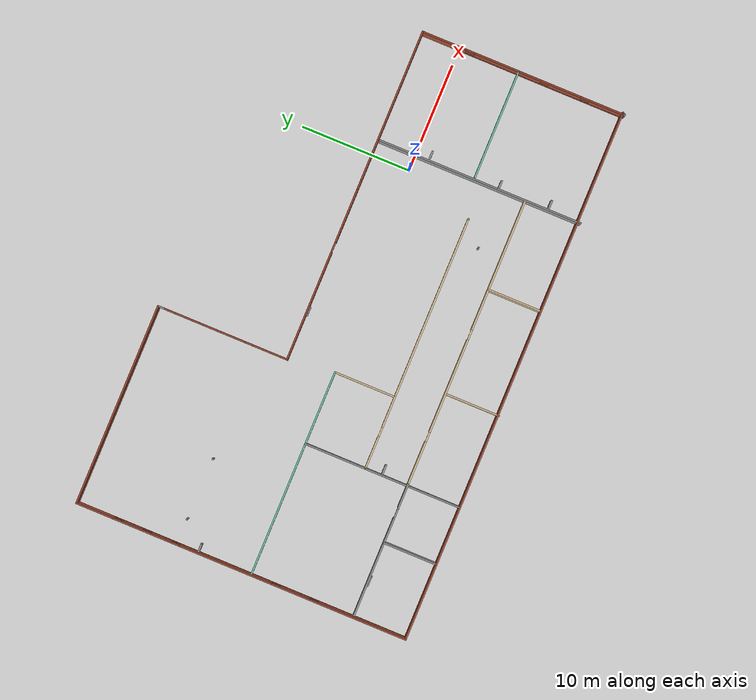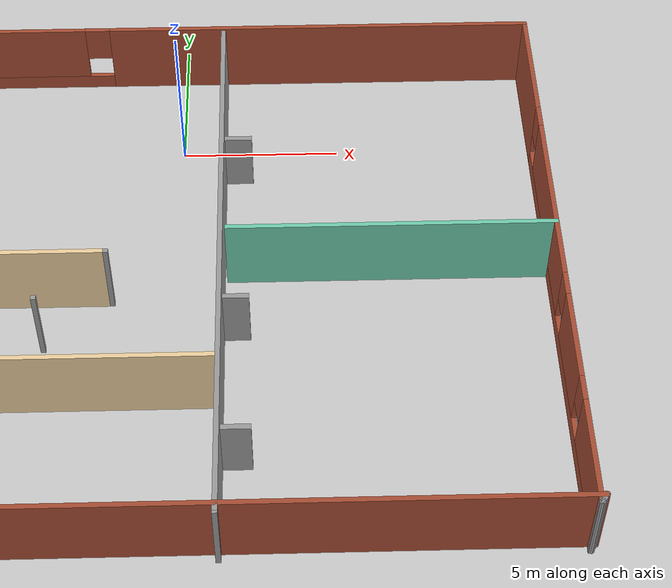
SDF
<?xml version='1.0'?>
<sdf version='1.6'>
  <model name='apartment'>
    <pose frame=''>-12.9863 0.062603 0 0 -0 0</pose>
    <link name='Door_0'>
      <collision name='Door_0_Collision'>
        <geometry>
          <box>
            <size>0.9 0.17 2</size>
          </box>
        </geometry>
        <pose frame=''>0 0 1 0 -0 0</pose>
      </collision>
      <visual name='Door_0_Visual'>
        <pose frame=''>0 0 1 0 -0 0</pose>
        <geometry>
          <box>
            <size>0.9 0.17 2</size>
          </box>
        </geometry>
        <material>
          <script>
            <uri>file://media/materials/scripts/gazebo.material</uri>
            <name>Gazebo/Grey</name>
          </script>
        </material>
      </visual>
      <pose frame=''>-11.7869 -7.94417 0 0 -0 0</pose>
    </link>
    <link name='Door_1'>
      <collision name='Door_1_Collision'>
        <geometry>
          <box>
            <size>0.9 0.17 2</size>
          </box>
        </geometry>
        <pose frame=''>0 0 1 0 -0 0</pose>
      </collision>
      <visual name='Door_1_Visual'>
        <pose frame=''>0 0 1 0 -0 0</pose>
        <geometry>
          <box>
            <size>0.9 0.17 2</size>
          </box>
        </geometry>
        <material>
          <script>
            <uri>file://media/materials/scripts/gazebo.material</uri>
            <name>Gazebo/Grey</name>
          </script>
        </material>
      </visual>
      <pose frame=''>-21.1714 -10.4305 0 0 -0 0</pose>
    </link>
    <link name='Door_12'>
      <collision name='Door_12_Collision'>
        <geometry>
          <box>
            <size>0.9 0.17 2</size>
          </box>
        </geometry>
        <pose frame=''>0 0 1 0 -0 0</pose>
      </collision>
      <visual name='Door_12_Visual'>
        <pose frame=''>0 0 1 0 -0 0</pose>
        <geometry>
          <box>
            <size>0.9 0.17 2</size>
          </box>
        </geometry>
        <material>
          <script>
            <uri>file://media/materials/scripts/gazebo.material</uri>
            <name>Gazebo/Grey</name>
          </script>
        </material>
      </visual>
      <pose frame=''>-24.1741 4.16519 0 0 -0 0</pose>
    </link>
    <link name='Door_5'>
      <collision name='Door_5_Collision'>
        <geometry>
          <box>
            <size>0.9 0.17 2</size>
          </box>
        </geometry>
        <pose frame=''>0 0 1 0 -0 0</pose>
      </collision>
      <visual name='Door_5_Visual'>
        <pose frame=''>0 0 1 0 -0 0</pose>
        <geometry>
          <box>
            <size>0.9 0.17 2</size>
          </box>
        </geometry>
        <material>
          <script>
            <uri>file://media/materials/scripts/gazebo.material</uri>
            <name>Gazebo/Grey</name>
          </script>
        </material>
      </visual>
      <pose frame=''>14.7939 -12.4665 0 0 -0 0</pose>
    </link>
    <link name='Door_6'>
      <collision name='Door_6_Collision'>
        <geometry>
          <box>
            <size>0.9 0.17 2</size>
          </box>
        </geometry>
        <pose frame=''>0 0 1 0 -0 0</pose>
      </collision>
      <visual name='Door_6_Visual'>
        <pose frame=''>0 0 1 0 -0 0</pose>
        <geometry>
          <box>
            <size>0.9 0.17 2</size>
          </box>
        </geometry>
        <material>
          <script>
            <uri>file://media/materials/scripts/gazebo.material</uri>
            <name>Gazebo/Grey</name>
          </script>
        </material>
      </visual>
      <pose frame=''>14.7223 -7.81488 0 0 -0 0</pose>
    </link>
    <link name='Door_7'>
      <collision name='Door_7_Collision'>
        <geometry>
          <box>
            <size>0.9 0.17 2</size>
          </box>
        </geometry>
        <pose frame=''>0 0 1 0 -0 0</pose>
      </collision>
      <visual name='Door_7_Visual'>
        <pose frame=''>0 0 1 0 -0 0</pose>
        <geometry>
          <box>
            <size>0.9 0.17 2</size>
          </box>
        </geometry>
        <material>
          <script>
            <uri>file://media/materials/scripts/gazebo.material</uri>
            <name>Gazebo/Grey</name>
          </script>
        </material>
      </visual>
      <pose frame=''>14.7939 -1.30265 0 0 -0 0</pose>
    </link>
    <link name='Wall_112'>
      <pose frame=''>9.08527 3.4404 0 0 -0 3.14159</pose>
      <visual name='Wall_112_Visual_0'>
        <pose frame=''>-8.39484 0 1.25 0 -0 0</pose>
        <geometry>
          <box>
            <size>13.9603 0.15 2.5</size>
          </box>
        </geometry>
        <material>
          <script>
            <uri>file://media/materials/scripts/gazebo.material</uri>
            <name>Gazebo/Bricks</name>
          </script>
          <ambient>0.921569 0.807843 0.615686 1</ambient>
        </material>
        <meta>
          <layer>0</layer>
        </meta>
      </visual>
      <collision name='Wall_112_Collision_0'>
        <geometry>
          <box>
            <size>13.9603 0.15 2.5</size>
          </box>
        </geometry>
        <pose frame=''>-8.39484 0 1.25 0 -0 0</pose>
      </collision>
      <visual name='Wall_112_Visual_1'>
        <pose frame=''>10.3181 0 1.25 0 -0 0</pose>
        <geometry>
          <box>
            <size>10.1138 0.15 2.5</size>
          </box>
        </geometry>
        <material>
          <script>
            <uri>file://media/materials/scripts/gazebo.material</uri>
            <name>Gazebo/Bricks</name>
          </script>
          <ambient>0.921569 0.807843 0.615686 1</ambient>
        </material>
        <meta>
          <layer>0</layer>
        </meta>
      </visual>
      <collision name='Wall_112_Collision_1'>
        <geometry>
          <box>
            <size>10.1138 0.15 2.5</size>
          </box>
        </geometry>
        <pose frame=''>10.3181 0 1.25 0 -0 0</pose>
      </collision>
      <visual name='Wall_112_Visual_2'>
        <pose frame=''>1.47324 0 0.25 0 -0 0</pose>
        <geometry>
          <box>
            <size>5.77585 0.15 0.5</size>
          </box>
        </geometry>
        <material>
          <script>
            <uri>file://media/materials/scripts/gazebo.material</uri>
            <name>Gazebo/Bricks</name>
          </script>
          <ambient>0.921569 0.807843 0.615686 1</ambient>
        </material>
        <meta>
          <layer>0</layer>
        </meta>
      </visual>
      <collision name='Wall_112_Collision_2'>
        <geometry>
          <box>
            <size>5.77585 0.15 0.5</size>
          </box>
        </geometry>
        <pose frame=''>1.47324 0 0.25 0 -0 0</pose>
      </collision>
      <visual name='Wall_112_Visual_3'>
        <pose frame=''>1.87324 0 1.5 0 -0 0</pose>
        <geometry>
          <box>
            <size>4.97586 0.15 2</size>
          </box>
        </geometry>
        <material>
          <script>
            <uri>file://media/materials/scripts/gazebo.material</uri>
            <name>Gazebo/Bricks</name>
          </script>
          <ambient>0.921569 0.807843 0.615686 1</ambient>
        </material>
        <meta>
          <layer>0</layer>
        </meta>
      </visual>
      <collision name='Wall_112_Collision_3'>
        <geometry>
          <box>
            <size>4.97586 0.15 2</size>
          </box>
        </geometry>
        <pose frame=''>1.87324 0 1.5 0 -0 0</pose>
      </collision>
      <visual name='Wall_112_Visual_4'>
        <pose frame=''>-1.01469 0 1.9 0 -0 0</pose>
        <geometry>
          <box>
            <size>0.8 0.15 1.2</size>
          </box>
        </geometry>
        <material>
          <script>
            <uri>file://media/materials/scripts/gazebo.material</uri>
            <name>Gazebo/Bricks</name>
          </script>
          <ambient>0.921569 0.807843 0.615686 1</ambient>
        </material>
        <meta>
          <layer>0</layer>
        </meta>
      </visual>
      <collision name='Wall_112_Collision_4'>
        <geometry>
          <box>
            <size>0.8 0.15 1.2</size>
          </box>
        </geometry>
        <pose frame=''>-1.01469 0 1.9 0 -0 0</pose>
      </collision>
      <visual name='Wall_112_Visual_5'>
        <pose frame=''>4.81117 0 2.25 0 -0 0</pose>
        <geometry>
          <box>
            <size>0.9 0.15 0.5</size>
          </box>
        </geometry>
        <material>
          <script>
            <uri>file://media/materials/scripts/gazebo.material</uri>
            <name>Gazebo/Bricks</name>
          </script>
          <ambient>0.921569 0.807843 0.615686 1</ambient>
        </material>
        <meta>
          <layer>0</layer>
        </meta>
      </visual>
      <collision name='Wall_112_Collision_5'>
        <geometry>
          <box>
            <size>0.9 0.15 0.5</size>
          </box>
        </geometry>
        <pose frame=''>4.81117 0 2.25 0 -0 0</pose>
      </collision>
    </link>
    <link name='Wall_113'>
      <pose frame=''>-6.21472 9.1154 0 0 -0 1.5708</pose>
      <visual name='Wall_113_Visual_0'>
        <pose frame=''>-4.14366 0 1.25 0 -0 0</pose>
        <geometry>
          <box>
            <size>3.21268 0.15 2.5</size>
          </box>
        </geometry>
        <material>
          <script>
            <uri>file://media/materials/scripts/gazebo.material</uri>
            <name>Gazebo/Bricks</name>
          </script>
          <ambient>1 1 1 1</ambient>
        </material>
        <meta>
          <layer>0</layer>
        </meta>
      </visual>
      <collision name='Wall_113_Collision_0'>
        <geometry>
          <box>
            <size>3.21268 0.15 2.5</size>
          </box>
        </geometry>
        <pose frame=''>-4.14366 0 1.25 0 -0 0</pose>
      </collision>
      <visual name='Wall_113_Visual_1'>
        <pose frame=''>1.60634 0 0.25 0 -0 0</pose>
        <geometry>
          <box>
            <size>8.28732 0.15 0.5</size>
          </box>
        </geometry>
        <material>
          <script>
            <uri>file://media/materials/scripts/gazebo.material</uri>
            <name>Gazebo/Bricks</name>
          </script>
          <ambient>1 1 1 1</ambient>
        </material>
        <meta>
          <layer>0</layer>
        </meta>
      </visual>
      <collision name='Wall_113_Collision_1'>
        <geometry>
          <box>
            <size>8.28732 0.15 0.5</size>
          </box>
        </geometry>
        <pose frame=''>1.60634 0 0.25 0 -0 0</pose>
      </collision>
      <visual name='Wall_113_Visual_2'>
        <pose frame=''>0.358577 0 1.5 0 -0 0</pose>
        <geometry>
          <box>
            <size>4.19179 0.15 2</size>
          </box>
        </geometry>
        <material>
          <script>
            <uri>file://media/materials/scripts/gazebo.material</uri>
            <name>Gazebo/Bricks</name>
          </script>
          <ambient>1 1 1 1</ambient>
        </material>
        <meta>
          <layer>0</layer>
        </meta>
      </visual>
      <collision name='Wall_113_Collision_2'>
        <geometry>
          <box>
            <size>4.19179 0.15 2</size>
          </box>
        </geometry>
        <pose frame=''>0.358577 0 1.5 0 -0 0</pose>
      </collision>
      <visual name='Wall_113_Visual_3'>
        <pose frame=''>4.50224 0 1.5 0 -0 0</pose>
        <geometry>
          <box>
            <size>2.49553 0.15 2</size>
          </box>
        </geometry>
        <material>
          <script>
            <uri>file://media/materials/scripts/gazebo.material</uri>
            <name>Gazebo/Bricks</name>
          </script>
          <ambient>1 1 1 1</ambient>
        </material>
        <meta>
          <layer>0</layer>
        </meta>
      </visual>
      <collision name='Wall_113_Collision_3'>
        <geometry>
          <box>
            <size>2.49553 0.15 2</size>
          </box>
        </geometry>
        <pose frame=''>4.50224 0 1.5 0 -0 0</pose>
      </collision>
      <visual name='Wall_113_Visual_4'>
        <pose frame=''>-2.13732 0 1.9 0 -0 0</pose>
        <geometry>
          <box>
            <size>0.8 0.15 1.2</size>
          </box>
        </geometry>
        <material>
          <script>
            <uri>file://media/materials/scripts/gazebo.material</uri>
            <name>Gazebo/Bricks</name>
          </script>
          <ambient>1 1 1 1</ambient>
        </material>
        <meta>
          <layer>0</layer>
        </meta>
      </visual>
      <collision name='Wall_113_Collision_4'>
        <geometry>
          <box>
            <size>0.8 0.15 1.2</size>
          </box>
        </geometry>
        <pose frame=''>-2.13732 0 1.9 0 -0 0</pose>
      </collision>
      <visual name='Wall_113_Visual_5'>
        <pose frame=''>2.85447 0 1.9 0 -0 0</pose>
        <geometry>
          <box>
            <size>0.8 0.15 1.2</size>
          </box>
        </geometry>
        <material>
          <script>
            <uri>file://media/materials/scripts/gazebo.material</uri>
            <name>Gazebo/Bricks</name>
          </script>
          <ambient>1 1 1 1</ambient>
        </material>
        <meta>
          <layer>0</layer>
        </meta>
      </visual>
      <collision name='Wall_113_Collision_5'>
        <geometry>
          <box>
            <size>0.8 0.15 1.2</size>
          </box>
        </geometry>
        <pose frame=''>2.85447 0 1.9 0 -0 0</pose>
      </collision>
    </link>
    <link name='Wall_114'>
      <collision name='Wall_114_Collision'>
        <geometry>
          <box>
            <size>0.821 0.15 2.5</size>
          </box>
        </geometry>
        <pose frame=''>0 0 1.25 0 -0 0</pose>
      </collision>
      <visual name='Wall_114_Visual'>
        <pose frame=''>0 0 1.25 0 -0 0</pose>
        <geometry>
          <box>
            <size>0.821 0.15 2.5</size>
          </box>
        </geometry>
        <material>
          <script>
            <uri>file://media/materials/scripts/gazebo.material</uri>
            <name>Gazebo/Grey</name>
          </script>
          <ambient>1 1 1 1</ambient>
        </material>
        <meta>
          <layer>0</layer>
        </meta>
      </visual>
      <pose frame=''>-6.21472 15.1259 0 0 -0 1.5708</pose>
    </link>
    <link name='Wall_115'>
      <collision name='Wall_115_Collision'>
        <geometry>
          <box>
            <size>18.5 0.15 2.5</size>
          </box>
        </geometry>
        <pose frame=''>0 0 1.25 0 -0 0</pose>
      </collision>
      <visual name='Wall_115_Visual'>
        <pose frame=''>0 0 1.25 0 -0 0</pose>
        <geometry>
          <box>
            <size>18.5 0.15 2.5</size>
          </box>
        </geometry>
        <material>
          <script>
            <uri>file://media/materials/scripts/gazebo.material</uri>
            <name>Gazebo/Bricks</name>
          </script>
          <ambient>0.435294 0.796078 0.67451 1</ambient>
        </material>
        <meta>
          <layer>0</layer>
        </meta>
      </visual>
      <pose frame=''>-15.3897 15.4614 0 0 -0 3.14159</pose>
    </link>
    <link name='Wall_118'>
      <collision name='Wall_118_Collision'>
        <geometry>
          <box>
            <size>18.9635 0.15 2.5</size>
          </box>
        </geometry>
        <pose frame=''>0 0 1.25 0 -0 0</pose>
      </collision>
      <visual name='Wall_118_Visual'>
        <pose frame=''>0 0 1.25 0 -0 0</pose>
        <geometry>
          <box>
            <size>18.9635 0.15 2.5</size>
          </box>
        </geometry>
        <material>
          <script>
            <uri>file://media/materials/scripts/gazebo.material</uri>
            <name>Gazebo/Grey</name>
          </script>
          <ambient>0.435294 0.796078 0.67451 1</ambient>
        </material>
        <meta>
          <layer>0</layer>
        </meta>
      </visual>
      <pose frame=''>-15.0582 -0.800603 0 0 -0 0</pose>
    </link>
    <link name='Wall_121'>
      <collision name='Wall_121_Collision'>
        <geometry>
          <box>
            <size>0.15 0.15 2.5</size>
          </box>
        </geometry>
        <pose frame=''>0 0 1.25 0 -0 0</pose>
      </collision>
      <visual name='Wall_121_Visual'>
        <pose frame=''>0 0 1.25 0 -0 0</pose>
        <geometry>
          <box>
            <size>0.15 0.15 2.5</size>
          </box>
        </geometry>
        <material>
          <script>
            <uri>file://media/materials/scripts/gazebo.material</uri>
            <name>Gazebo/Grey</name>
          </script>
          <ambient>1 1 1 1</ambient>
        </material>
        <meta>
          <layer>0</layer>
        </meta>
      </visual>
      <pose frame=''>8.98448 -8.15071 0 0 -0 0</pose>
    </link>
    <link name='Wall_125'>
      <collision name='Wall_125_Collision'>
        <geometry>
          <box>
            <size>18.75 0.15 2.5</size>
          </box>
        </geometry>
        <pose frame=''>0 0 1.25 0 -0 0</pose>
      </collision>
      <visual name='Wall_125_Visual'>
        <pose frame=''>0 0 1.25 0 -0 0</pose>
        <geometry>
          <box>
            <size>18.75 0.15 2.5</size>
          </box>
        </geometry>
        <material>
          <script>
            <uri>file://media/materials/scripts/gazebo.material</uri>
            <name>Gazebo/Grey</name>
          </script>
          <ambient>1 1 1 1</ambient>
        </material>
        <meta>
          <layer>0</layer>
        </meta>
      </visual>
      <pose frame=''>14.3102 -6.0791 0 0 0 -1.5708</pose>
    </link>
    <link name='Wall_126'>
      <collision name='Wall_126_Collision'>
        <geometry>
          <box>
            <size>0.15 0.15 2.5</size>
          </box>
        </geometry>
        <pose frame=''>0 0 1.25 0 -0 0</pose>
      </collision>
      <visual name='Wall_126_Visual'>
        <pose frame=''>0 0 1.25 0 -0 0</pose>
        <geometry>
          <box>
            <size>0.15 0.15 2.5</size>
          </box>
        </geometry>
        <material>
          <script>
            <uri>file://media/materials/scripts/gazebo.material</uri>
            <name>Gazebo/Grey</name>
          </script>
          <ambient>1 1 1 1</ambient>
        </material>
        <meta>
          <layer>0</layer>
        </meta>
      </visual>
      <pose frame=''>14.3102 -15.4614 0 0 -0 0</pose>
    </link>
    <link name='Wall_128'>
      <collision name='Wall_128_Collision'>
        <geometry>
          <box>
            <size>10 0.15 2.5</size>
          </box>
        </geometry>
        <pose frame=''>0 0 1.25 0 -0 0</pose>
      </collision>
      <visual name='Wall_128_Visual'>
        <pose frame=''>0 0 1.25 0 -0 0</pose>
        <geometry>
          <box>
            <size>10 0.15 2.5</size>
          </box>
        </geometry>
        <material>
          <script>
            <uri>file://media/materials/scripts/gazebo.material</uri>
            <name>Gazebo/Grey</name>
          </script>
          <ambient>0.435294 0.796078 0.67451 1</ambient>
        </material>
        <meta>
          <layer>0</layer>
        </meta>
      </visual>
      <pose frame=''>19.4473 -5.5416 0 0 -0 0</pose>
    </link>
    <link name='Wall_129'>
      <collision name='Wall_129_Collision'>
        <geometry>
          <box>
            <size>0.15 0.15 2.5</size>
          </box>
        </geometry>
        <pose frame=''>0 0 1.25 0 -0 0</pose>
      </collision>
      <visual name='Wall_129_Visual'>
        <pose frame=''>0 0 1.25 0 -0 0</pose>
        <geometry>
          <box>
            <size>0.15 0.15 2.5</size>
          </box>
        </geometry>
        <material>
          <script>
            <uri>file://media/materials/scripts/gazebo.material</uri>
            <name>Gazebo/Grey</name>
          </script>
          <ambient>1 1 1 1</ambient>
        </material>
        <meta>
          <layer>0</layer>
        </meta>
      </visual>
      <pose frame=''>24.3723 -5.5416 0 0 -0 0</pose>
    </link>
    <link name='Wall_131'>
      <collision name='Wall_131_Collision'>
        <geometry>
          <box>
            <size>14.5 0.15 2.5</size>
          </box>
        </geometry>
        <pose frame=''>0 0 1.25 0 -0 0</pose>
      </collision>
      <visual name='Wall_131_Visual'>
        <pose frame=''>0 0 1.25 0 -0 0</pose>
        <geometry>
          <box>
            <size>14.5 0.15 2.5</size>
          </box>
        </geometry>
        <material>
          <script>
            <uri>file://media/materials/scripts/gazebo.material</uri>
            <name>Gazebo/Grey</name>
          </script>
          <ambient>1 1 1 1</ambient>
        </material>
        <meta>
          <layer>0</layer>
        </meta>
      </visual>
      <pose frame=''>-12.3185 -7.99968 0 0 0 -1.5708</pose>
    </link>
    <link name='Wall_136'>
      <collision name='Wall_136_Collision'>
        <geometry>
          <box>
            <size>5 0.15 2.5</size>
          </box>
        </geometry>
        <pose frame=''>0 0 1.25 0 -0 0</pose>
      </collision>
      <visual name='Wall_136_Visual'>
        <pose frame=''>0 0 1.25 0 -0 0</pose>
        <geometry>
          <box>
            <size>5 0.15 2.5</size>
          </box>
        </geometry>
        <material>
          <script>
            <uri>file://media/materials/scripts/gazebo.material</uri>
            <name>Gazebo/Grey</name>
          </script>
          <ambient>1 1 1 1</ambient>
        </material>
        <meta>
          <layer>0</layer>
        </meta>
      </visual>
      <pose frame=''>-17.6013 -12.7779 0 0 0 -1.5708</pose>
    </link>
    <link name='Wall_137'>
      <collision name='Wall_137_Collision'>
        <geometry>
          <box>
            <size>0.15 0.15 2.5</size>
          </box>
        </geometry>
        <pose frame=''>0 0 1.25 0 -0 0</pose>
      </collision>
      <visual name='Wall_137_Visual'>
        <pose frame=''>0 0 1.25 0 -0 0</pose>
        <geometry>
          <box>
            <size>0.15 0.15 2.5</size>
          </box>
        </geometry>
        <material>
          <script>
            <uri>file://media/materials/scripts/gazebo.material</uri>
            <name>Gazebo/Grey</name>
          </script>
          <ambient>1 1 1 1</ambient>
        </material>
        <meta>
          <layer>0</layer>
        </meta>
      </visual>
      <pose frame=''>-17.6013 -15.2029 0 0 -0 0</pose>
    </link>
    <link name='Wall_142'>
      <pose frame=''>24.3853 -5.9846 0 0 0 -1.5708</pose>
      <visual name='Wall_142_Visual_0'>
        <pose frame=''>-7.41721 0 1.25 0 -0 0</pose>
        <geometry>
          <box>
            <size>4.16558 0.15 2.5</size>
          </box>
        </geometry>
        <material>
          <script>
            <uri>file://media/materials/scripts/gazebo.material</uri>
            <name>Gazebo/Bricks</name>
          </script>
          <ambient>1 1 1 1</ambient>
        </material>
        <meta>
          <layer>0</layer>
        </meta>
      </visual>
      <collision name='Wall_142_Collision_0'>
        <geometry>
          <box>
            <size>4.16558 0.15 2.5</size>
          </box>
        </geometry>
        <pose frame=''>-7.41721 0 1.25 0 -0 0</pose>
      </collision>
      <visual name='Wall_142_Visual_1'>
        <pose frame=''>2.08279 0 0.25 0 -0 0</pose>
        <geometry>
          <box>
            <size>14.8344 0.15 0.5</size>
          </box>
        </geometry>
        <material>
          <script>
            <uri>file://media/materials/scripts/gazebo.material</uri>
            <name>Gazebo/Bricks</name>
          </script>
          <ambient>1 1 1 1</ambient>
        </material>
        <meta>
          <layer>0</layer>
        </meta>
      </visual>
      <collision name='Wall_142_Collision_1'>
        <geometry>
          <box>
            <size>14.8344 0.15 0.5</size>
          </box>
        </geometry>
        <pose frame=''>2.08279 0 0.25 0 -0 0</pose>
      </collision>
      <visual name='Wall_142_Visual_2'>
        <pose frame=''>-1.4693 0 1.5 0 -0 0</pose>
        <geometry>
          <box>
            <size>6.13025 0.15 2</size>
          </box>
        </geometry>
        <material>
          <script>
            <uri>file://media/materials/scripts/gazebo.material</uri>
            <name>Gazebo/Bricks</name>
          </script>
          <ambient>1 1 1 1</ambient>
        </material>
        <meta>
          <layer>0</layer>
        </meta>
      </visual>
      <collision name='Wall_142_Collision_2'>
        <geometry>
          <box>
            <size>6.13025 0.15 2</size>
          </box>
        </geometry>
        <pose frame=''>-1.4693 0 1.5 0 -0 0</pose>
      </collision>
      <visual name='Wall_142_Visual_3'>
        <pose frame=''>3.87845 0 1.5 0 -0 0</pose>
        <geometry>
          <box>
            <size>2.96524 0.15 2</size>
          </box>
        </geometry>
        <material>
          <script>
            <uri>file://media/materials/scripts/gazebo.material</uri>
            <name>Gazebo/Bricks</name>
          </script>
          <ambient>1 1 1 1</ambient>
        </material>
        <meta>
          <layer>0</layer>
        </meta>
      </visual>
      <collision name='Wall_142_Collision_3'>
        <geometry>
          <box>
            <size>2.96524 0.15 2</size>
          </box>
        </geometry>
        <pose frame=''>3.87845 0 1.5 0 -0 0</pose>
      </collision>
      <visual name='Wall_142_Visual_4'>
        <pose frame=''>7.83053 0 1.5 0 -0 0</pose>
        <geometry>
          <box>
            <size>3.33893 0.15 2</size>
          </box>
        </geometry>
        <material>
          <script>
            <uri>file://media/materials/scripts/gazebo.material</uri>
            <name>Gazebo/Bricks</name>
          </script>
          <ambient>1 1 1 1</ambient>
        </material>
        <meta>
          <layer>0</layer>
        </meta>
      </visual>
      <collision name='Wall_142_Collision_4'>
        <geometry>
          <box>
            <size>3.33893 0.15 2</size>
          </box>
        </geometry>
        <pose frame=''>7.83053 0 1.5 0 -0 0</pose>
      </collision>
      <visual name='Wall_142_Visual_5'>
        <pose frame=''>-4.93442 0 1.9 0 -0 0</pose>
        <geometry>
          <box>
            <size>0.8 0.15 1.2</size>
          </box>
        </geometry>
        <material>
          <script>
            <uri>file://media/materials/scripts/gazebo.material</uri>
            <name>Gazebo/Bricks</name>
          </script>
          <ambient>1 1 1 1</ambient>
        </material>
        <meta>
          <layer>0</layer>
        </meta>
      </visual>
      <collision name='Wall_142_Collision_5'>
        <geometry>
          <box>
            <size>0.8 0.15 1.2</size>
          </box>
        </geometry>
        <pose frame=''>-4.93442 0 1.9 0 -0 0</pose>
      </collision>
      <visual name='Wall_142_Visual_6'>
        <pose frame=''>1.99583 0 1.9 0 -0 0</pose>
        <geometry>
          <box>
            <size>0.8 0.15 1.2</size>
          </box>
        </geometry>
        <material>
          <script>
            <uri>file://media/materials/scripts/gazebo.material</uri>
            <name>Gazebo/Bricks</name>
          </script>
          <ambient>1 1 1 1</ambient>
        </material>
        <meta>
          <layer>0</layer>
        </meta>
      </visual>
      <collision name='Wall_142_Collision_6'>
        <geometry>
          <box>
            <size>0.8 0.15 1.2</size>
          </box>
        </geometry>
        <pose frame=''>1.99583 0 1.9 0 -0 0</pose>
      </collision>
      <visual name='Wall_142_Visual_7'>
        <pose frame=''>5.76107 0 1.9 0 -0 0</pose>
        <geometry>
          <box>
            <size>0.8 0.15 1.2</size>
          </box>
        </geometry>
        <material>
          <script>
            <uri>file://media/materials/scripts/gazebo.material</uri>
            <name>Gazebo/Bricks</name>
          </script>
          <ambient>1 1 1 1</ambient>
        </material>
        <meta>
          <layer>0</layer>
        </meta>
      </visual>
      <collision name='Wall_142_Collision_7'>
        <geometry>
          <box>
            <size>0.8 0.15 1.2</size>
          </box>
        </geometry>
        <pose frame=''>5.76107 0 1.9 0 -0 0</pose>
      </collision>
    </link>
    <link name='Wall_143'>
      <collision name='Wall_143_Collision'>
        <geometry>
          <box>
            <size>0.15 0.15 2.5</size>
          </box>
        </geometry>
        <pose frame=''>0 0 1.25 0 -0 0</pose>
      </collision>
      <visual name='Wall_143_Visual'>
        <pose frame=''>0 0 1.25 0 -0 0</pose>
        <geometry>
          <box>
            <size>0.15 0.15 2.5</size>
          </box>
        </geometry>
        <material>
          <script>
            <uri>file://media/materials/scripts/gazebo.material</uri>
            <name>Gazebo/Grey</name>
          </script>
          <ambient>1 1 1 1</ambient>
        </material>
        <meta>
          <layer>0</layer>
        </meta>
      </visual>
      <pose frame=''>24.3853 -15.4096 0 0 -0 0</pose>
    </link>
    <link name='Wall_144'>
      <collision name='Wall_144_Collision'>
        <geometry>
          <box>
            <size>0.16 0.15 2.5</size>
          </box>
        </geometry>
        <pose frame=''>0 0 1.25 0 -0 0</pose>
      </collision>
      <visual name='Wall_144_Visual'>
        <pose frame=''>0 0 1.25 0 -0 0</pose>
        <geometry>
          <box>
            <size>0.16 0.15 2.5</size>
          </box>
        </geometry>
        <material>
          <script>
            <uri>file://media/materials/scripts/gazebo.material</uri>
            <name>Gazebo/Grey</name>
          </script>
          <ambient>1 1 1 1</ambient>
        </material>
        <meta>
          <layer>0</layer>
        </meta>
      </visual>
      <pose frame=''>24.3903 -15.4096 0 0 0 -0.001447</pose>
    </link>
    <link name='Wall_145'>
      <collision name='Wall_145_Collision'>
        <geometry>
          <box>
            <size>0.16 0.15 2.5</size>
          </box>
        </geometry>
        <pose frame=''>0 0 1.25 0 -0 0</pose>
      </collision>
      <visual name='Wall_145_Visual'>
        <pose frame=''>0 0 1.25 0 -0 0</pose>
        <geometry>
          <box>
            <size>0.16 0.15 2.5</size>
          </box>
        </geometry>
        <material>
          <script>
            <uri>file://media/materials/scripts/gazebo.material</uri>
            <name>Gazebo/Grey</name>
          </script>
          <ambient>1 1 1 1</ambient>
        </material>
        <meta>
          <layer>0</layer>
        </meta>
      </visual>
      <pose frame=''>24.3903 -15.4096 0 0 -0 3.14015</pose>
    </link>
    <link name='Wall_147'>
      <pose frame=''>-24.5647 0.125897 0 0 0 -1.5708</pose>
      <visual name='Wall_147_Visual_0'>
        <pose frame=''>-13.6537 0 1.25 0 -0 0</pose>
        <geometry>
          <box>
            <size>3.51357 0.15 2.5</size>
          </box>
        </geometry>
        <material>
          <script>
            <uri>file://media/materials/scripts/gazebo.material</uri>
            <name>Gazebo/Bricks</name>
          </script>
          <ambient>1 1 1 1</ambient>
        </material>
        <meta>
          <layer>0</layer>
        </meta>
      </visual>
      <collision name='Wall_147_Collision_0'>
        <geometry>
          <box>
            <size>3.51357 0.15 2.5</size>
          </box>
        </geometry>
        <pose frame=''>-13.6537 0 1.25 0 -0 0</pose>
      </collision>
      <visual name='Wall_147_Visual_1'>
        <pose frame=''>1.75679 0 0.25 0 -0 0</pose>
        <geometry>
          <box>
            <size>27.3074 0.15 0.5</size>
          </box>
        </geometry>
        <material>
          <script>
            <uri>file://media/materials/scripts/gazebo.material</uri>
            <name>Gazebo/Bricks</name>
          </script>
          <ambient>1 1 1 1</ambient>
        </material>
        <meta>
          <layer>0</layer>
        </meta>
      </visual>
      <collision name='Wall_147_Collision_1'>
        <geometry>
          <box>
            <size>27.3074 0.15 0.5</size>
          </box>
        </geometry>
        <pose frame=''>1.75679 0 0.25 0 -0 0</pose>
      </collision>
      <visual name='Wall_147_Visual_2'>
        <pose frame=''>-10.1433 0 1.5 0 -0 0</pose>
        <geometry>
          <box>
            <size>1.90715 0.15 2</size>
          </box>
        </geometry>
        <material>
          <script>
            <uri>file://media/materials/scripts/gazebo.material</uri>
            <name>Gazebo/Bricks</name>
          </script>
          <ambient>1 1 1 1</ambient>
        </material>
        <meta>
          <layer>0</layer>
        </meta>
      </visual>
      <collision name='Wall_147_Collision_2'>
        <geometry>
          <box>
            <size>1.90715 0.15 2</size>
          </box>
        </geometry>
        <pose frame=''>-10.1433 0 1.5 0 -0 0</pose>
      </collision>
      <visual name='Wall_147_Visual_3'>
        <pose frame=''>-7.45709 0 1.5 0 -0 0</pose>
        <geometry>
          <box>
            <size>1.86536 0.15 2</size>
          </box>
        </geometry>
        <material>
          <script>
            <uri>file://media/materials/scripts/gazebo.material</uri>
            <name>Gazebo/Bricks</name>
          </script>
          <ambient>1 1 1 1</ambient>
        </material>
        <meta>
          <layer>0</layer>
        </meta>
      </visual>
      <collision name='Wall_147_Collision_3'>
        <geometry>
          <box>
            <size>1.86536 0.15 2</size>
          </box>
        </geometry>
        <pose frame=''>-7.45709 0 1.5 0 -0 0</pose>
      </collision>
      <visual name='Wall_147_Visual_4'>
        <pose frame=''>-1.45937 0 1.5 0 -0 0</pose>
        <geometry>
          <box>
            <size>8.53009 0.15 2</size>
          </box>
        </geometry>
        <material>
          <script>
            <uri>file://media/materials/scripts/gazebo.material</uri>
            <name>Gazebo/Bricks</name>
          </script>
          <ambient>1 1 1 1</ambient>
        </material>
        <meta>
          <layer>0</layer>
        </meta>
      </visual>
      <collision name='Wall_147_Collision_4'>
        <geometry>
          <box>
            <size>8.53009 0.15 2</size>
          </box>
        </geometry>
        <pose frame=''>-1.45937 0 1.5 0 -0 0</pose>
      </collision>
      <visual name='Wall_147_Visual_5'>
        <pose frame=''>4.9854 0 1.5 0 -0 0</pose>
        <geometry>
          <box>
            <size>2.75946 0.15 2</size>
          </box>
        </geometry>
        <material>
          <script>
            <uri>file://media/materials/scripts/gazebo.material</uri>
            <name>Gazebo/Bricks</name>
          </script>
          <ambient>1 1 1 1</ambient>
        </material>
        <meta>
          <layer>0</layer>
        </meta>
      </visual>
      <collision name='Wall_147_Collision_5'>
        <geometry>
          <box>
            <size>2.75946 0.15 2</size>
          </box>
        </geometry>
        <pose frame=''>4.9854 0 1.5 0 -0 0</pose>
      </collision>
      <visual name='Wall_147_Visual_6'>
        <pose frame=''>11.2878 0 1.5 0 -0 0</pose>
        <geometry>
          <box>
            <size>8.24537 0.15 2</size>
          </box>
        </geometry>
        <material>
          <script>
            <uri>file://media/materials/scripts/gazebo.material</uri>
            <name>Gazebo/Bricks</name>
          </script>
          <ambient>1 1 1 1</ambient>
        </material>
        <meta>
          <layer>0</layer>
        </meta>
      </visual>
      <collision name='Wall_147_Collision_6'>
        <geometry>
          <box>
            <size>8.24537 0.15 2</size>
          </box>
        </geometry>
        <pose frame=''>11.2878 0 1.5 0 -0 0</pose>
      </collision>
      <visual name='Wall_147_Visual_7'>
        <pose frame=''>-11.4969 0 1.9 0 -0 0</pose>
        <geometry>
          <box>
            <size>0.8 0.15 1.2</size>
          </box>
        </geometry>
        <material>
          <script>
            <uri>file://media/materials/scripts/gazebo.material</uri>
            <name>Gazebo/Bricks</name>
          </script>
          <ambient>1 1 1 1</ambient>
        </material>
        <meta>
          <layer>0</layer>
        </meta>
      </visual>
      <collision name='Wall_147_Collision_7'>
        <geometry>
          <box>
            <size>0.8 0.15 1.2</size>
          </box>
        </geometry>
        <pose frame=''>-11.4969 0 1.9 0 -0 0</pose>
      </collision>
      <visual name='Wall_147_Visual_8'>
        <pose frame=''>-8.78977 0 1.9 0 -0 0</pose>
        <geometry>
          <box>
            <size>0.8 0.15 1.2</size>
          </box>
        </geometry>
        <material>
          <script>
            <uri>file://media/materials/scripts/gazebo.material</uri>
            <name>Gazebo/Bricks</name>
          </script>
          <ambient>1 1 1 1</ambient>
        </material>
        <meta>
          <layer>0</layer>
        </meta>
      </visual>
      <collision name='Wall_147_Collision_8'>
        <geometry>
          <box>
            <size>0.8 0.15 1.2</size>
          </box>
        </geometry>
        <pose frame=''>-8.78977 0 1.9 0 -0 0</pose>
      </collision>
      <visual name='Wall_147_Visual_9'>
        <pose frame=''>-6.12441 0 1.9 0 -0 0</pose>
        <geometry>
          <box>
            <size>0.8 0.15 1.2</size>
          </box>
        </geometry>
        <material>
          <script>
            <uri>file://media/materials/scripts/gazebo.material</uri>
            <name>Gazebo/Bricks</name>
          </script>
          <ambient>1 1 1 1</ambient>
        </material>
        <meta>
          <layer>0</layer>
        </meta>
      </visual>
      <collision name='Wall_147_Collision_9'>
        <geometry>
          <box>
            <size>0.8 0.15 1.2</size>
          </box>
        </geometry>
        <pose frame=''>-6.12441 0 1.9 0 -0 0</pose>
      </collision>
      <visual name='Wall_147_Visual_10'>
        <pose frame=''>3.20568 0 1.9 0 -0 0</pose>
        <geometry>
          <box>
            <size>0.8 0.15 1.2</size>
          </box>
        </geometry>
        <material>
          <script>
            <uri>file://media/materials/scripts/gazebo.material</uri>
            <name>Gazebo/Bricks</name>
          </script>
          <ambient>1 1 1 1</ambient>
        </material>
        <meta>
          <layer>0</layer>
        </meta>
      </visual>
      <collision name='Wall_147_Collision_10'>
        <geometry>
          <box>
            <size>0.8 0.15 1.2</size>
          </box>
        </geometry>
        <pose frame=''>3.20568 0 1.9 0 -0 0</pose>
      </collision>
      <visual name='Wall_147_Visual_11'>
        <pose frame=''>6.76513 0 1.9 0 -0 0</pose>
        <geometry>
          <box>
            <size>0.8 0.15 1.2</size>
          </box>
        </geometry>
        <material>
          <script>
            <uri>file://media/materials/scripts/gazebo.material</uri>
            <name>Gazebo/Bricks</name>
          </script>
          <ambient>1 1 1 1</ambient>
        </material>
        <meta>
          <layer>0</layer>
        </meta>
      </visual>
      <collision name='Wall_147_Collision_11'>
        <geometry>
          <box>
            <size>0.8 0.15 1.2</size>
          </box>
        </geometry>
        <pose frame=''>6.76513 0 1.9 0 -0 0</pose>
      </collision>
    </link>
    <link name='Wall_148'>
      <collision name='Wall_148_Collision'>
        <geometry>
          <box>
            <size>0.15 0.15 2.5</size>
          </box>
        </geometry>
        <pose frame=''>0 0 1.25 0 -0 0</pose>
      </collision>
      <visual name='Wall_148_Visual'>
        <pose frame=''>0 0 1.25 0 -0 0</pose>
        <geometry>
          <box>
            <size>0.15 0.15 2.5</size>
          </box>
        </geometry>
        <material>
          <script>
            <uri>file://media/materials/scripts/gazebo.material</uri>
            <name>Gazebo/Grey</name>
          </script>
          <ambient>1 1 1 1</ambient>
        </material>
        <meta>
          <layer>0</layer>
        </meta>
      </visual>
      <pose frame=''>-24.5647 -15.2096 0 0 -0 0</pose>
    </link>
    <link name='Wall_150'>
      <collision name='Wall_150_Collision'>
        <geometry>
          <box>
            <size>49.25 0.15 2.5</size>
          </box>
        </geometry>
        <pose frame=''>0 0 1.25 0 -0 0</pose>
      </collision>
      <visual name='Wall_150_Visual'>
        <pose frame=''>0 0 1.25 0 -0 0</pose>
        <geometry>
          <box>
            <size>49.25 0.15 2.5</size>
          </box>
        </geometry>
        <material>
          <script>
            <uri>file://media/materials/scripts/gazebo.material</uri>
            <name>Gazebo/Bricks</name>
          </script>
          <ambient>1 1 1 1</ambient>
        </material>
        <meta>
          <layer>0</layer>
        </meta>
      </visual>
      <pose frame=''>-0.014725 -15.2096 0 0 -0 0</pose>
    </link>
    <link name='Wall_151'>
      <collision name='Wall_151_Collision'>
        <geometry>
          <box>
            <size>0.394131 0.15 2.5</size>
          </box>
        </geometry>
        <pose frame=''>0 0 1.25 0 -0 0</pose>
      </collision>
      <visual name='Wall_151_Visual'>
        <pose frame=''>0 0 1.25 0 -0 0</pose>
        <geometry>
          <box>
            <size>0.394131 0.15 2.5</size>
          </box>
        </geometry>
        <material>
          <script>
            <uri>file://media/materials/scripts/gazebo.material</uri>
            <name>Gazebo/Grey</name>
          </script>
          <ambient>1 1 1 1</ambient>
        </material>
        <meta>
          <layer>0</layer>
        </meta>
      </visual>
      <pose frame=''>24.4653 -15.3096 0 0 0 -2.18146</pose>
    </link>
    <link name='Wall_153'>
      <pose frame=''>-18.2654 -10.3237 0 0 -0 9e-06</pose>
      <visual name='Wall_153_Visual_0'>
        <pose frame=''>-1.59998 0 1.25 0 -0 0</pose>
        <geometry>
          <box>
            <size>9.12139 0.15 2.5</size>
          </box>
        </geometry>
        <material>
          <script>
            <uri>file://media/materials/scripts/gazebo.material</uri>
            <name>Gazebo/Grey</name>
          </script>
          <ambient>1 1 1 1</ambient>
        </material>
        <meta>
          <layer>0</layer>
        </meta>
      </visual>
      <collision name='Wall_153_Collision_0'>
        <geometry>
          <box>
            <size>9.12139 0.15 2.5</size>
          </box>
        </geometry>
        <pose frame=''>-1.59998 0 1.25 0 -0 0</pose>
      </collision>
      <visual name='Wall_153_Visual_1'>
        <pose frame=''>5.01069 0 1.25 0 -0 0</pose>
        <geometry>
          <box>
            <size>2.29996 0.15 2.5</size>
          </box>
        </geometry>
        <material>
          <script>
            <uri>file://media/materials/scripts/gazebo.material</uri>
            <name>Gazebo/Grey</name>
          </script>
          <ambient>1 1 1 1</ambient>
        </material>
        <meta>
          <layer>0</layer>
        </meta>
      </visual>
      <collision name='Wall_153_Collision_1'>
        <geometry>
          <box>
            <size>2.29996 0.15 2.5</size>
          </box>
        </geometry>
        <pose frame=''>5.01069 0 1.25 0 -0 0</pose>
      </collision>
      <visual name='Wall_153_Visual_2'>
        <pose frame=''>3.41071 0 2.25 0 -0 0</pose>
        <geometry>
          <box>
            <size>0.9 0.15 0.5</size>
          </box>
        </geometry>
        <material>
          <script>
            <uri>file://media/materials/scripts/gazebo.material</uri>
            <name>Gazebo/Grey</name>
          </script>
          <ambient>1 1 1 1</ambient>
        </material>
        <meta>
          <layer>0</layer>
        </meta>
      </visual>
      <collision name='Wall_153_Collision_2'>
        <geometry>
          <box>
            <size>0.9 0.15 0.5</size>
          </box>
        </geometry>
        <pose frame=''>3.41071 0 2.25 0 -0 0</pose>
      </collision>
    </link>
    <link name='Wall_154'>
      <collision name='Wall_154_Collision'>
        <geometry>
          <box>
            <size>0.211343 0.15 2.5</size>
          </box>
        </geometry>
        <pose frame=''>0 0 1.25 0 -0 0</pose>
      </collision>
      <visual name='Wall_154_Visual'>
        <pose frame=''>0 0 1.25 0 -0 0</pose>
        <geometry>
          <box>
            <size>0.211343 0.15 2.5</size>
          </box>
        </geometry>
        <material>
          <script>
            <uri>file://media/materials/scripts/gazebo.material</uri>
            <name>Gazebo/Grey</name>
          </script>
          <ambient>1 1 1 1</ambient>
        </material>
        <meta>
          <layer>0</layer>
        </meta>
      </visual>
      <pose frame=''>-12.2104 -10.3237 0 0 0 -3.13985</pose>
    </link>
    <link name='Wall_161'>
      <collision name='Wall_161_Collision'>
        <geometry>
          <box>
            <size>5.75 0.15 2.5</size>
          </box>
        </geometry>
        <pose frame=''>0 0 1.25 0 -0 0</pose>
      </collision>
      <visual name='Wall_161_Visual'>
        <pose frame=''>0 0 1.25 0 -0 0</pose>
        <geometry>
          <box>
            <size>5.75 0.15 2.5</size>
          </box>
        </geometry>
        <material>
          <script>
            <uri>file://media/materials/scripts/gazebo.material</uri>
            <name>Gazebo/Grey</name>
          </script>
          <ambient>0.921569 0.807843 0.615686 1</ambient>
        </material>
        <meta>
          <layer>0</layer>
        </meta>
      </visual>
      <pose frame=''>-5.65172 -3.6006 0 0 0 -1.5708</pose>
    </link>
    <link name='Wall_162'>
      <collision name='Wall_162_Collision'>
        <geometry>
          <box>
            <size>16.75 0.15 2.5</size>
          </box>
        </geometry>
        <pose frame=''>0 0 1.25 0 -0 0</pose>
      </collision>
      <visual name='Wall_162_Visual'>
        <pose frame=''>0 0 1.25 0 -0 0</pose>
        <geometry>
          <box>
            <size>16.75 0.15 2.5</size>
          </box>
        </geometry>
        <material>
          <script>
            <uri>file://media/materials/scripts/gazebo.material</uri>
            <name>Gazebo/Grey</name>
          </script>
          <ambient>0.921569 0.807843 0.615686 1</ambient>
        </material>
        <meta>
          <layer>0</layer>
        </meta>
      </visual>
      <pose frame=''>2.64827 -6.4006 0 0 -0 0</pose>
    </link>
    <link name='Wall_163'>
      <collision name='Wall_163_Collision'>
        <geometry>
          <box>
            <size>0.15 0.15 2.5</size>
          </box>
        </geometry>
        <pose frame=''>0 0 1.25 0 -0 0</pose>
      </collision>
      <visual name='Wall_163_Visual'>
        <pose frame=''>0 0 1.25 0 -0 0</pose>
        <geometry>
          <box>
            <size>0.15 0.15 2.5</size>
          </box>
        </geometry>
        <material>
          <script>
            <uri>file://media/materials/scripts/gazebo.material</uri>
            <name>Gazebo/Grey</name>
          </script>
          <ambient>1 1 1 1</ambient>
        </material>
        <meta>
          <layer>0</layer>
        </meta>
      </visual>
      <pose frame=''>10.9483 -6.4006 0 0 -0 0</pose>
    </link>
    <link name='Wall_168'>
      <pose frame=''>-8.95172 -6.4006 0 0 -0 3.14159</pose>
      <visual name='Wall_168_Visual_0'>
        <pose frame=''>-1.94139 0 1.25 0 -0 0</pose>
        <geometry>
          <box>
            <size>2.86722 0.15 2.5</size>
          </box>
        </geometry>
        <material>
          <script>
            <uri>file://media/materials/scripts/gazebo.material</uri>
            <name>Gazebo/Grey</name>
          </script>
          <ambient>0.921569 0.807843 0.615686 1</ambient>
        </material>
        <meta>
          <layer>0</layer>
        </meta>
      </visual>
      <collision name='Wall_168_Collision_0'>
        <geometry>
          <box>
            <size>2.86722 0.15 2.5</size>
          </box>
        </geometry>
        <pose frame=''>-1.94139 0 1.25 0 -0 0</pose>
      </collision>
      <visual name='Wall_168_Visual_1'>
        <pose frame=''>1.88361 0 1.25 0 -0 0</pose>
        <geometry>
          <box>
            <size>2.98278 0.15 2.5</size>
          </box>
        </geometry>
        <material>
          <script>
            <uri>file://media/materials/scripts/gazebo.material</uri>
            <name>Gazebo/Grey</name>
          </script>
          <ambient>0.921569 0.807843 0.615686 1</ambient>
        </material>
        <meta>
          <layer>0</layer>
        </meta>
      </visual>
      <collision name='Wall_168_Collision_1'>
        <geometry>
          <box>
            <size>2.98278 0.15 2.5</size>
          </box>
        </geometry>
        <pose frame=''>1.88361 0 1.25 0 -0 0</pose>
      </collision>
      <visual name='Wall_168_Visual_2'>
        <pose frame=''>-0.057775 0 2.25 0 -0 0</pose>
        <geometry>
          <box>
            <size>0.9 0.15 0.5</size>
          </box>
        </geometry>
        <material>
          <script>
            <uri>file://media/materials/scripts/gazebo.material</uri>
            <name>Gazebo/Grey</name>
          </script>
          <ambient>0.921569 0.807843 0.615686 1</ambient>
        </material>
        <meta>
          <layer>0</layer>
        </meta>
      </visual>
      <collision name='Wall_168_Collision_2'>
        <geometry>
          <box>
            <size>0.9 0.15 0.5</size>
          </box>
        </geometry>
        <pose frame=''>-0.057775 0 2.25 0 -0 0</pose>
      </collision>
    </link>
    <link name='Wall_169'>
      <collision name='Wall_169_Collision'>
        <geometry>
          <box>
            <size>0.16 0.15 2.5</size>
          </box>
        </geometry>
        <pose frame=''>0 0 1.25 0 -0 0</pose>
      </collision>
      <visual name='Wall_169_Visual'>
        <pose frame=''>0 0 1.25 0 -0 0</pose>
        <geometry>
          <box>
            <size>0.16 0.15 2.5</size>
          </box>
        </geometry>
        <material>
          <script>
            <uri>file://media/materials/scripts/gazebo.material</uri>
            <name>Gazebo/Grey</name>
          </script>
          <ambient>1 1 1 1</ambient>
        </material>
        <meta>
          <layer>0</layer>
        </meta>
      </visual>
      <pose frame=''>-12.2465 -6.40066 0 0 0 -0.010444</pose>
    </link>
    <link name='Wall_171'>
      <pose frame=''>0.995275 -10.3236 0 0 -0 0</pose>
      <visual name='Wall_171_Visual_0'>
        <pose frame=''>-11.2201 0 1.25 0 -0 0</pose>
        <geometry>
          <box>
            <size>4.05979 0.15 2.5</size>
          </box>
        </geometry>
        <material>
          <script>
            <uri>file://media/materials/scripts/gazebo.material</uri>
            <name>Gazebo/Grey</name>
          </script>
          <ambient>0.921569 0.807843 0.615686 1</ambient>
        </material>
        <meta>
          <layer>0</layer>
        </meta>
      </visual>
      <collision name='Wall_171_Collision_0'>
        <geometry>
          <box>
            <size>4.05979 0.15 2.5</size>
          </box>
        </geometry>
        <pose frame=''>-11.2201 0 1.25 0 -0 0</pose>
      </collision>
      <visual name='Wall_171_Visual_1'>
        <pose frame=''>-3.97972 0 1.25 0 -0 0</pose>
        <geometry>
          <box>
            <size>8.62098 0.15 2.5</size>
          </box>
        </geometry>
        <material>
          <script>
            <uri>file://media/materials/scripts/gazebo.material</uri>
            <name>Gazebo/Grey</name>
          </script>
          <ambient>0.921569 0.807843 0.615686 1</ambient>
        </material>
        <meta>
          <layer>0</layer>
        </meta>
      </visual>
      <collision name='Wall_171_Collision_1'>
        <geometry>
          <box>
            <size>8.62098 0.15 2.5</size>
          </box>
        </geometry>
        <pose frame=''>-3.97972 0 1.25 0 -0 0</pose>
      </collision>
      <visual name='Wall_171_Visual_2'>
        <pose frame=''>7.24038 0 1.25 0 -0 0</pose>
        <geometry>
          <box>
            <size>12.0192 0.15 2.5</size>
          </box>
        </geometry>
        <material>
          <script>
            <uri>file://media/materials/scripts/gazebo.material</uri>
            <name>Gazebo/Grey</name>
          </script>
          <ambient>0.921569 0.807843 0.615686 1</ambient>
        </material>
        <meta>
          <layer>0</layer>
        </meta>
      </visual>
      <collision name='Wall_171_Collision_2'>
        <geometry>
          <box>
            <size>12.0192 0.15 2.5</size>
          </box>
        </geometry>
        <pose frame=''>7.24038 0 1.25 0 -0 0</pose>
      </collision>
      <visual name='Wall_171_Visual_3'>
        <pose frame=''>-8.74021 0 2.25 0 -0 0</pose>
        <geometry>
          <box>
            <size>0.9 0.15 0.5</size>
          </box>
        </geometry>
        <material>
          <script>
            <uri>file://media/materials/scripts/gazebo.material</uri>
            <name>Gazebo/Grey</name>
          </script>
          <ambient>0.921569 0.807843 0.615686 1</ambient>
        </material>
        <meta>
          <layer>0</layer>
        </meta>
      </visual>
      <collision name='Wall_171_Collision_3'>
        <geometry>
          <box>
            <size>0.9 0.15 0.5</size>
          </box>
        </geometry>
        <pose frame=''>-8.74021 0 2.25 0 -0 0</pose>
      </collision>
      <visual name='Wall_171_Visual_4'>
        <pose frame=''>0.78077 0 2.25 0 -0 0</pose>
        <geometry>
          <box>
            <size>0.9 0.15 0.5</size>
          </box>
        </geometry>
        <material>
          <script>
            <uri>file://media/materials/scripts/gazebo.material</uri>
            <name>Gazebo/Grey</name>
          </script>
          <ambient>0.921569 0.807843 0.615686 1</ambient>
        </material>
        <meta>
          <layer>0</layer>
        </meta>
      </visual>
      <collision name='Wall_171_Collision_4'>
        <geometry>
          <box>
            <size>0.9 0.15 0.5</size>
          </box>
        </geometry>
        <pose frame=''>0.78077 0 2.25 0 -0 0</pose>
      </collision>
    </link>
    <link name='Wall_173'>
      <collision name='Wall_173_Collision'>
        <geometry>
          <box>
            <size>5 0.15 2.5</size>
          </box>
        </geometry>
        <pose frame=''>0 0 1.25 0 -0 0</pose>
      </collision>
      <visual name='Wall_173_Visual'>
        <pose frame=''>0 0 1.25 0 -0 0</pose>
        <geometry>
          <box>
            <size>5 0.15 2.5</size>
          </box>
        </geometry>
        <material>
          <script>
            <uri>file://media/materials/scripts/gazebo.material</uri>
            <name>Gazebo/Grey</name>
          </script>
          <ambient>0.921569 0.807843 0.615686 1</ambient>
        </material>
        <meta>
          <layer>0</layer>
        </meta>
      </visual>
      <pose frame=''>-3.72472 -12.8556 0 0 0 -1.5708</pose>
    </link>
    <link name='Wall_174'>
      <collision name='Wall_174_Collision'>
        <geometry>
          <box>
            <size>0.16 0.15 2.5</size>
          </box>
        </geometry>
        <pose frame=''>0 0 1.25 0 -0 0</pose>
      </collision>
      <visual name='Wall_174_Visual'>
        <pose frame=''>0 0 1.25 0 -0 0</pose>
        <geometry>
          <box>
            <size>0.16 0.15 2.5</size>
          </box>
        </geometry>
        <material>
          <script>
            <uri>file://media/materials/scripts/gazebo.material</uri>
            <name>Gazebo/Grey</name>
          </script>
          <ambient>1 1 1 1</ambient>
        </material>
        <meta>
          <layer>0</layer>
        </meta>
      </visual>
      <pose frame=''>-3.71953 -15.2806 0 0 -0 0.007049</pose>
    </link>
    <link name='Wall_176'>
      <collision name='Wall_176_Collision'>
        <geometry>
          <box>
            <size>5 0.15 2.5</size>
          </box>
        </geometry>
        <pose frame=''>0 0 1.25 0 -0 0</pose>
      </collision>
      <visual name='Wall_176_Visual'>
        <pose frame=''>0 0 1.25 0 -0 0</pose>
        <geometry>
          <box>
            <size>5 0.15 2.5</size>
          </box>
        </geometry>
        <material>
          <script>
            <uri>file://media/materials/scripts/gazebo.material</uri>
            <name>Gazebo/Grey</name>
          </script>
          <ambient>0.921569 0.807843 0.615686 1</ambient>
        </material>
        <meta>
          <layer>0</layer>
        </meta>
      </visual>
      <pose frame=''>5.98628 -12.7736 0 0 0 -1.5708</pose>
    </link>
    <link name='Wall_179'>
      <collision name='Wall_179_Collision'>
        <geometry>
          <box>
            <size>0.15 0.15 2.5</size>
          </box>
        </geometry>
        <pose frame=''>0 0 1.25 0 -0 0</pose>
      </collision>
      <visual name='Wall_179_Visual'>
        <pose frame=''>0 0 1.25 0 -0 0</pose>
        <geometry>
          <box>
            <size>0.15 0.15 2.5</size>
          </box>
        </geometry>
        <material>
          <script>
            <uri>file://media/materials/scripts/gazebo.material</uri>
            <name>Gazebo/Grey</name>
          </script>
          <ambient>1 1 1 1</ambient>
        </material>
        <meta>
          <layer>0</layer>
        </meta>
      </visual>
      <pose frame=''>-22.2223 6.13989 0 0 -0 0</pose>
    </link>
    <link name='Wall_182'>
      <collision name='Wall_182_Collision'>
        <geometry>
          <box>
            <size>0.15 0.15 2.5</size>
          </box>
        </geometry>
        <pose frame=''>0 0 1.25 0 -0 0</pose>
      </collision>
      <visual name='Wall_182_Visual'>
        <pose frame=''>0 0 1.25 0 -0 0</pose>
        <geometry>
          <box>
            <size>0.15 0.15 2.5</size>
          </box>
        </geometry>
        <material>
          <script>
            <uri>file://media/materials/scripts/gazebo.material</uri>
            <name>Gazebo/Grey</name>
          </script>
          <ambient>1 1 1 1</ambient>
        </material>
        <meta>
          <layer>0</layer>
        </meta>
      </visual>
      <pose frame=''>-16.5726 6.06833 0 0 -0 0</pose>
    </link>
    <link name='Window_11'>
      <collision name='Window_11_Collision'>
        <geometry>
          <box>
            <size>0.8 0.17 0.8</size>
          </box>
        </geometry>
        <pose frame=''>0 0 0.4 0 -0 0</pose>
      </collision>
      <visual name='Window_11_Visual'>
        <pose frame=''>0 0 0.4 0 -0 0</pose>
        <geometry>
          <box>
            <size>0.8 0.17 0.8</size>
          </box>
        </geometry>
        <material>
          <script>
            <uri>file://media/materials/scripts/gazebo.material</uri>
            <name>Gazebo/Grey</name>
          </script>
        </material>
      </visual>
      <pose frame=''>-1.64124 3.33999 0.5 0 -0 0</pose>
    </link>
    <static>1</static>
  </model>
</sdf>
